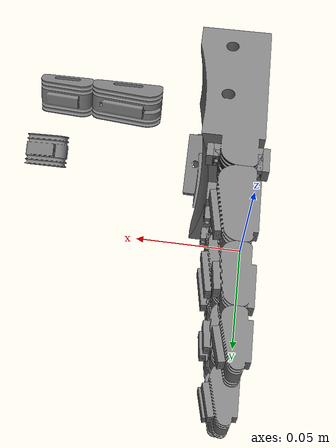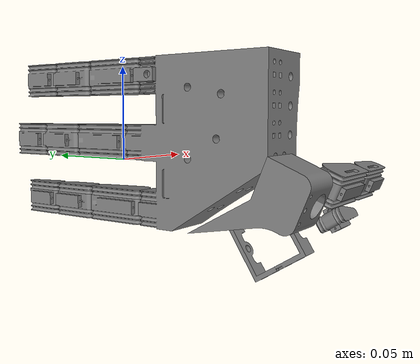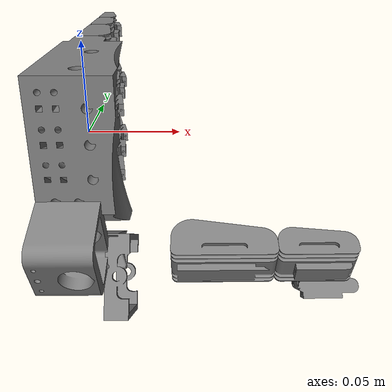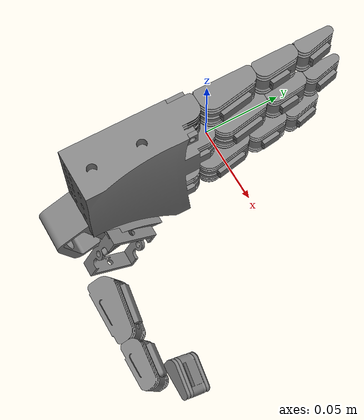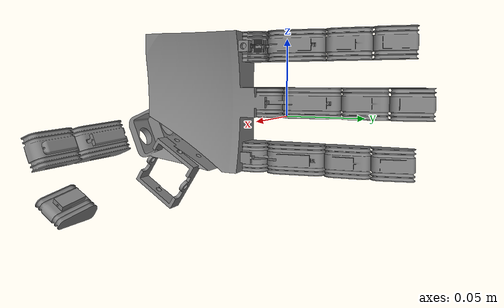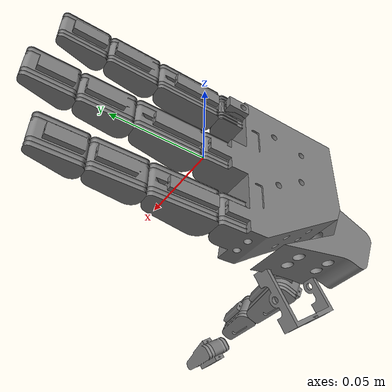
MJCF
<mujoco model="robot_hand">
    <compiler angle="radian" />
    <asset>
        <!-- Hand Palm -->
        <mesh name="hand_palm_mesh"
            file="mesh\palm-prototype_hand-v1.2-2023-11-13.stl"
            scale="0.001 0.001 0.001"></mesh>

        <!-- Index Finger Components -->
        <mesh name="index_finger_prox_mesh"
            file="mesh\finger_index_prox-prototype_hand-v1.2-2023-11-13.stl"
            scale="0.001 0.001 0.001"></mesh>
        <mesh name="index_finger_mid_mesh"
            file="mesh\finger_index_mid-prototype_hand-v1.2-2023-11-13.stl"
            scale="0.001 0.001 0.001"></mesh>
        <mesh name="index_finger_top_mesh"
            file="mesh\finger_index_top-prototype_hand-v1.2-2023-11-13.stl"
            scale="0.001 0.001 0.001"></mesh>

        <!-- Middle Finger Components -->
        <mesh name="middle_finger_prox_mesh"
            file="mesh\finger_middle_prox-prototype_hand-v1.2-2023-11-13.stl"
            scale="0.001 0.001 0.001"></mesh>
        <mesh name="middle_finger_mid_mesh"
            file="mesh\finger_middle_mid-prototype_hand-v1.2-2023-11-13.stl"
            scale="0.001 0.001 0.001"></mesh>
        <mesh name="middle_finger_top_mesh"
            file="mesh\finger_middle_top-prototype_hand-v1.2-2023-11-13.stl"
            scale="0.001 0.001 0.001"></mesh>

        <!-- Pinky Finger Components -->
        <mesh name="pinky_finger_prox_mesh"
            file="mesh\finger_pinky_prox-prototype_hand-v1.2-2023-11-13.stl"
            scale="0.001 0.001 0.001"></mesh>
        <mesh name="pinky_finger_mid_mesh"
            file="mesh\finger_pinky_mid-prototype_hand-v1.2-2023-11-13.stl"
            scale="0.001 0.001 0.001"></mesh>
        <mesh name="pinky_finger_top_mesh"
            file="mesh\finger_pinky_top-prototype_hand-v1.2-2023-11-13.stl"
            scale="0.001 0.001 0.001"></mesh>

        <!-- Thumb Components -->
        <mesh name="thumb_palm_attachement_mesh"
            file="mesh\thumb_palm_attachment.stl"
            scale="0.001 0.001 0.001"></mesh>

        <mesh name="thumb_flexion_extension_mesh"
            file="mesh\thumb_flexion_extension.stl"
            scale="0.001 0.001 0.001"></mesh>

        <mesh name="thumb_upper_finger_base_mesh"
            file="mesh\thumb_upper_finger_base.stl"
            scale="0.001 0.001 0.001"></mesh>

        <mesh name="thumb_prox_mesh"
            file="mesh\thumb_finger_prox.stl"
            scale="0.001 0.001 0.001"></mesh>

        <mesh name="thumb_mid_mesh"
            file="mesh\thumb_finger_mid.stl"
            scale="0.001 0.001 0.001"></mesh>

        <mesh name="thumb_top_mesh"
            file="mesh\thumb_finger_top.stl"
            scale="0.001 0.001 0.001"></mesh>

    </asset>

    <default>
        <joint type="hinge" limited="true" damping="0.05" armature="0.001" margin="0.01"
            frictionloss="0.001" />
        <position ctrllimited="true" forcelimited="true" forcerange="-1 1" kp="2."/>
        <tendon limited="true" range="-0.001 0.001"/>
    </default>

    <worldbody>
        <body name="hand_palm">
            <geom type="mesh" mesh="hand_palm_mesh" contype = "1" conaffinity = "0"></geom>

            <!-- Index Finger -->
            <body name="index_finger_prox_virt">
                <joint name="index_finger_prox_virt_joint" axis="0 0 -1" pos="0.00800 -0.01800 0.05450" range="0 0.83"></joint>
                <inertial pos="0 0 0" mass="0.001" diaginertia="4E-10 4E-10 3E-10" />

                <body name="index_finger_prox">
                    <joint name="index_finger_prox_joint" axis="0 0 -1" pos="0.00800 -0.00200 0.05450" range="0 0.83"></joint>
                    <geom type="mesh" mesh="index_finger_prox_mesh" contype = "1" conaffinity = "0"></geom>

                    <body name="index_finger_mid_virt">
                        <joint name="index_finger_mid_virt_joint" axis="0 0 -1" pos="0.006 0.02100 0.05450" range="0 0.96"></joint>
                        <inertial pos="0 0 0" mass="0.001" diaginertia="4E-10 4E-10 3E-10"/>

                        <body name="index_finger_mid">
                            <joint name="index_finger_mid_joint" axis="0 0 -1" pos="0.006 0.03300 0.05450" range="0 0.96"></joint>
                            <geom type="mesh" mesh="index_finger_mid_mesh"></geom>

                            <body name="index_finger_top_virt">
                                <joint name="index_finger_top_virt_joint" axis="0 0 -1" pos="0.005 0.05000 0.05450" range="0 0.68"></joint>
                                <inertial pos="0 0 0" mass="0.001" diaginertia="4E-10 4E-10 3E-10" />

                                <body name="index_finger_top">
                                    <joint name="index_finger_top_joint" axis="0 0 -1" pos="0.005 0.06000 0.05450" range="0 0.68"></joint>
                                    <geom type="mesh" mesh="index_finger_top_mesh"></geom>
                                </body>
                            </body>
                        </body>
                    </body>
                </body>
            </body>

            <!-- Middle Finger -->
            <body name="middle_finger_prox_virt">
                <joint name="middle_finger_prox_virt_joint" axis="0 0 -1" pos="0.008 -0.008 0" range="0 0.83"></joint>
                <inertial pos="0 0 0" mass="0.001" diaginertia="4E-10 4E-10 3E-10" />

                <body name="middle_finger_prox">
                    <joint name="middle_finger_prox_joint" axis="0 0 -1" pos="0.008 0.008 0" range="0 0.83"></joint>
                    <geom type="mesh" mesh="middle_finger_prox_mesh"></geom>

                    <body name="middle_finger_mid_virt">
                        <joint name="middle_finger_mid_virt_joint" axis="0 0 -1" pos="0.006 0.031 0" range="0 0.96"></joint>
                        <inertial pos="0 0 0" mass="0.001" diaginertia="4E-10 4E-10 3E-10" />

                        <body name="middle_finger_mid">
                            <joint name="middle_finger_mid_joint" axis="0 0 -1" pos="0.006 0.043 0" range="0 0.96"></joint>
                            <geom type="mesh" mesh="middle_finger_mid_mesh"></geom>

                            <body name="middle_finger_top_virt">
                                <joint name="middle_finger_top_virt_joint" axis="0 0 -1"
                                    pos="0.005 0.060 0" range="0 0.68"></joint>
                                <inertial pos="0 0 0" mass="0.001" diaginertia="4E-10 4E-10 3E-10" />

                                <body name="middle_finger_top">
                                    <joint name="middle_finger_top_joint" axis="0 0 -1" pos="0.005 0.070 0" range="0 0.68"></joint>
                                    <geom type="mesh" mesh="middle_finger_top_mesh"></geom>
                                </body>
                            </body>
                        </body>
                    </body>
                </body>

            </body>

            <!-- Pinky Finger -->
            <body name="pinky_finger_prox_virt">
                <joint name="pinky_finger_prox_virt_joint" axis="0 0 -1" pos="0.008 -0.018 0" range="0 0.83"></joint>
                <inertial pos="0 0 0" mass="0.001" diaginertia="4E-10 4E-10 3E-10" />

                <body name="pinky_finger_prox">
                    <joint name="pinky_finger_prox_joint" axis="0 0 -1" pos="0.008 -0.002 0" range="0 0.83"></joint>
                    <geom type="mesh" mesh="pinky_finger_prox_mesh" contype = "1" conaffinity = "0"></geom>

                    <body name="pinky_finger_mid_virt">
                        <joint name="pinky_finger_mid_virt_joint" axis="0 0 -1" pos="0.006 0.021 0" range="0 0.96"></joint>
                        <inertial pos="0 0 0" mass="0.001" diaginertia="4E-10 4E-10 3E-10" />

                        <body name="pinky_finger_mid">
                            <joint name="pinky_finger_mid_joint" axis="0 0 -1" pos="0.006 0.033 0" range="0 0.96"></joint>
                            <geom type="mesh" mesh="pinky_finger_mid_mesh"></geom>

                            <body name="pinky_finger_top_virt">
                                <joint name="pinky_finger_top_virt_joint" axis="0 0 -1"
                                    pos="0.005 0.050 0" range="0 0.68"></joint>
                                <inertial pos="0 0 0" mass="0.001" diaginertia="4E-10 4E-10 3E-10" />

                                <body name="pinky_finger_top">
                                    <joint name="pinky_finger_top_joint" axis="0 0 -1" pos="0.005 0.060 0" range="0 0.68"></joint>
                                    <geom type="mesh" mesh="pinky_finger_top_mesh"></geom>
                                </body>
                            </body>
                        </body>
                    </body>
                </body>
            </body>

            <!-- Thumb -->
            <body name="thumb_palm_attachment">
                <geom type="mesh" mesh="thumb_palm_attachement_mesh" contype ="0" conaffinity = "0"></geom>

                <body name="thumb_flexion_extension">
                    <joint name="thumb_flexion_extension_joint" type="hinge" axis="0.0 -0.84 0.54" pos="0.0262 -0.060889 -0.048065" range="-0.87 0.87"></joint>
                    <geom type="mesh" mesh="thumb_flexion_extension_mesh" contype ="0" conaffinity = "0"></geom>

                    <body name="thumb_upper_finger_base">
                        <joint name="thumb_adduction_abduction_joint" type="hinge" axis="0.0 -0.535 -0.845" pos="0.02620 -0.067708 -0.026184" range="-0.7 0.7"></joint>
                        <geom type="mesh" mesh="thumb_upper_finger_base_mesh"> </geom>

                        <body name="thumb_prox_virt">
                            <joint name="thumb_finger_prox_joint_virt" axis="0.0 -0.84 0.54" pos="0.02970 -0.06806 -0.043502" range="0 0.83"></joint>
                            <inertial pos="0 0 0" mass="0.001" diaginertia="4E-10 4E-10 3E-10" />

                            <body name="thumb_prox">
                                <joint name="thumb_finger_prox_joint" axis="0.0 -0.84 0.54" pos="0.0457 -0.06806 -0.043502" range="0 0.83"></joint>
                                <geom type="mesh" mesh="thumb_prox_mesh"></geom>

                                <body name="thumb_mid_virt">
                                    <joint name="thumb_finger_mid_joint_virt" axis="0.0 -0.84 0.54" pos="0.06870 -0.069134 -0.045189" range="0 0.83"></joint>
                                    <inertial pos="0 0 0" mass="0.001" diaginertia="4E-10 4E-10 3E-10" />

                                    <body name="thumb_mid">
                                        <joint name="thumb_finger_mid_joint" axis="0.0 -0.84 0.54" pos="0.0807 -0.069134 -0.045189" range="0 0.83"></joint>
                                        <geom type="mesh" mesh="thumb_mid_mesh"></geom>

                                        <body name="thumb_top_virt">
                                            <joint name="thumb_finger_top_joint_virt" axis="0.0 -0.84 0.54" pos="0.09770 -0.069671 -0.046033" range="0 0.83"></joint>
                                            <inertial pos="0 0 0" mass="0.001" diaginertia="4E-10 4E-10 3E-10" />

                                            <body name="thumb_top">
                                                <joint name="thumb_finger_top_joint" axis="0.0 -0.84 0.54" pos="0.10770 -0.069671 -0.046033" range="0 0.83"></joint>
                                                <geom type="mesh" mesh="thumb_top_mesh"></geom>
                                            </body>
                                        </body>
                                    </body>
                                </body>
                            </body>
                        </body>
                    </body>
                </body>
            </body>

        </body>

    </worldbody>

    <actuator>
        <position name="index_finger_prox_joint" joint="index_finger_prox_joint" ctrlrange="0 0.84"/>
        <position name="index_finger_mid_joint" joint="index_finger_mid_joint" ctrlrange="0 0.96" kp="4"/>
        <position name="middle_finger_prox_joint" joint="middle_finger_prox_joint" ctrlrange="0 0.84"/>
        <position name="middle_finger_mid_joint" joint="middle_finger_mid_joint" ctrlrange="0 0.96" kp="4"/>
        <position name="pinky_finger_prox_joint" joint="pinky_finger_prox_joint" ctrlrange="0 0.84"/>
        <position name="pinky_finger_mid_joint" joint="pinky_finger_mid_joint" ctrlrange="0 0.96" kp="4"/>
        <position name="thumb_flexion_extension_joint" joint="thumb_flexion_extension_joint" ctrlrange="-0.87 0.87" kp="4"/>
        <position name="thumb_adduction_abduction_joint" joint="thumb_adduction_abduction_joint" ctrlrange="-0.7 0.7" kp="4"/>
        <position name="thumb_finger_prox_joint" joint="thumb_finger_prox_joint" ctrlrange="0.0 0.84" kp="4"/>
        <position name="thumb_finger_mid_joint" joint="thumb_finger_mid_joint" ctrlrange="0.0 0.96" kp="4"/>
    </actuator>

    <tendon>

        <!-- Index finger -->
        <fixed name="index_root2index_pp">
            <joint joint="index_finger_prox_virt_joint" coef="1"/>
            <joint joint="index_finger_prox_joint" coef="-1"/>
        </fixed>
        <fixed name="index_index_pp2mp">
            <joint joint="index_finger_mid_virt_joint" coef="1"/>
            <joint joint="index_finger_mid_joint" coef="-1"/>
        </fixed>
        <fixed name="index_index_jointlink">
            <joint joint="index_finger_mid_joint" coef="0.71"/>
            <joint joint="index_finger_top_virt_joint" coef="-1"/>
        </fixed>
        <fixed name="index_index_mp2dp">
            <joint joint="index_finger_top_virt_joint" coef="1"/>
            <joint joint="index_finger_top_joint" coef="-1"/>
        </fixed>

        <!-- Middle finger -->
        <fixed name="middle_root2index_pp">
            <joint joint="middle_finger_prox_virt_joint" coef="1"/>
            <joint joint="middle_finger_prox_joint" coef="-1"/>
        </fixed>
        <fixed name="middle_index_pp2mp">
            <joint joint="middle_finger_mid_virt_joint" coef="1"/>
            <joint joint="middle_finger_mid_joint" coef="-1"/>
        </fixed>
        <fixed name="middle_index_jointlink">
            <joint joint="middle_finger_mid_joint" coef="0.71"/>
            <joint joint="middle_finger_top_virt_joint" coef="-1"/>
        </fixed>
        <fixed name="middle_index_mp2dp">
            <joint joint="middle_finger_top_virt_joint" coef="1"/>
            <joint joint="middle_finger_top_joint" coef="-1"/>
        </fixed>

        <!-- Pinky finger -->
        <fixed name="pinky_root2index_pp">
            <joint joint="pinky_finger_prox_virt_joint" coef="1"/>
            <joint joint="pinky_finger_prox_joint" coef="-1"/>
        </fixed>
        <fixed name="pinky_index_pp2mp">
            <joint joint="pinky_finger_mid_virt_joint" coef="1"/>
            <joint joint="pinky_finger_mid_joint" coef="-1"/>
        </fixed>
        <fixed name="pinky_index_jointlink">
            <joint joint="pinky_finger_mid_joint" coef="0.71"/>
            <joint joint="pinky_finger_top_virt_joint" coef="-1"/>
        </fixed>
        <fixed name="pinky_index_mp2dp">
            <joint joint="pinky_finger_top_virt_joint" coef="1"/>
            <joint joint="pinky_finger_top_joint" coef="-1"/>
        </fixed>

        <!-- Thumb -->
        <fixed name="thumb_root2index_pp">
            <joint joint="thumb_finger_prox_joint_virt" coef="1"/>
            <joint joint="thumb_finger_prox_joint" coef="-1"/>
        </fixed>
        <fixed name="thumb_index_pp2mp">
            <joint joint="thumb_finger_mid_joint_virt" coef="1"/>
            <joint joint="thumb_finger_mid_joint" coef="-1"/>
        </fixed>
        <fixed name="thumb_index_jointlink">
            <joint joint="thumb_finger_mid_joint" coef="0.71"/>
            <joint joint="thumb_finger_top_joint_virt" coef="-1"/>
        </fixed>
        <fixed name="thumb_index_mp2dp">
            <joint joint="thumb_finger_top_joint_virt" coef="1"/>
            <joint joint="thumb_finger_top_joint" coef="-1"/>
        </fixed>

    </tendon>

</mujoco>
